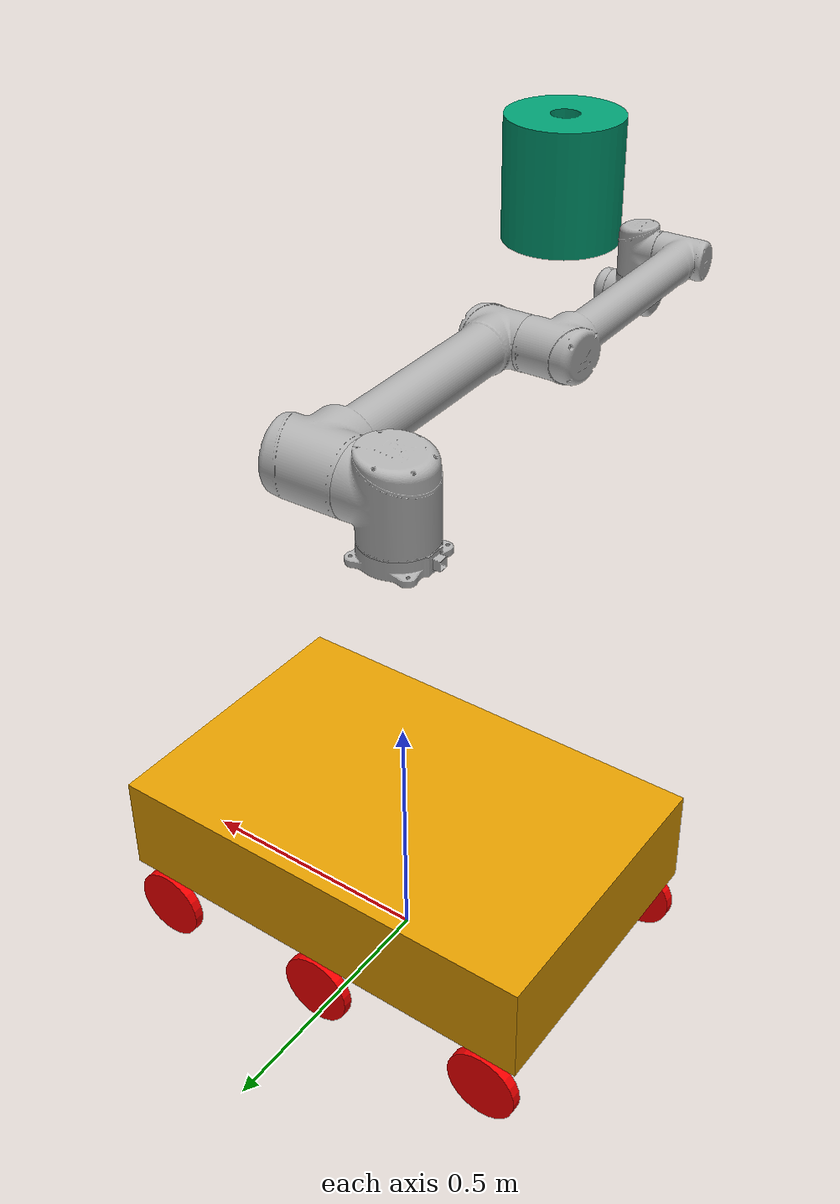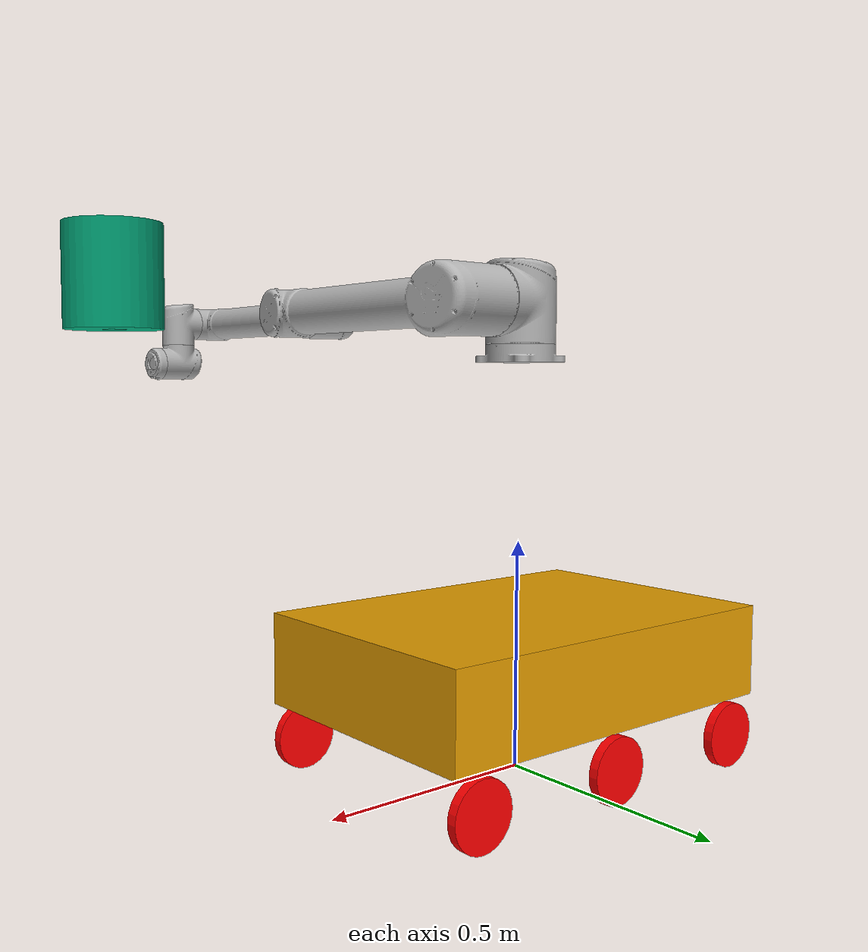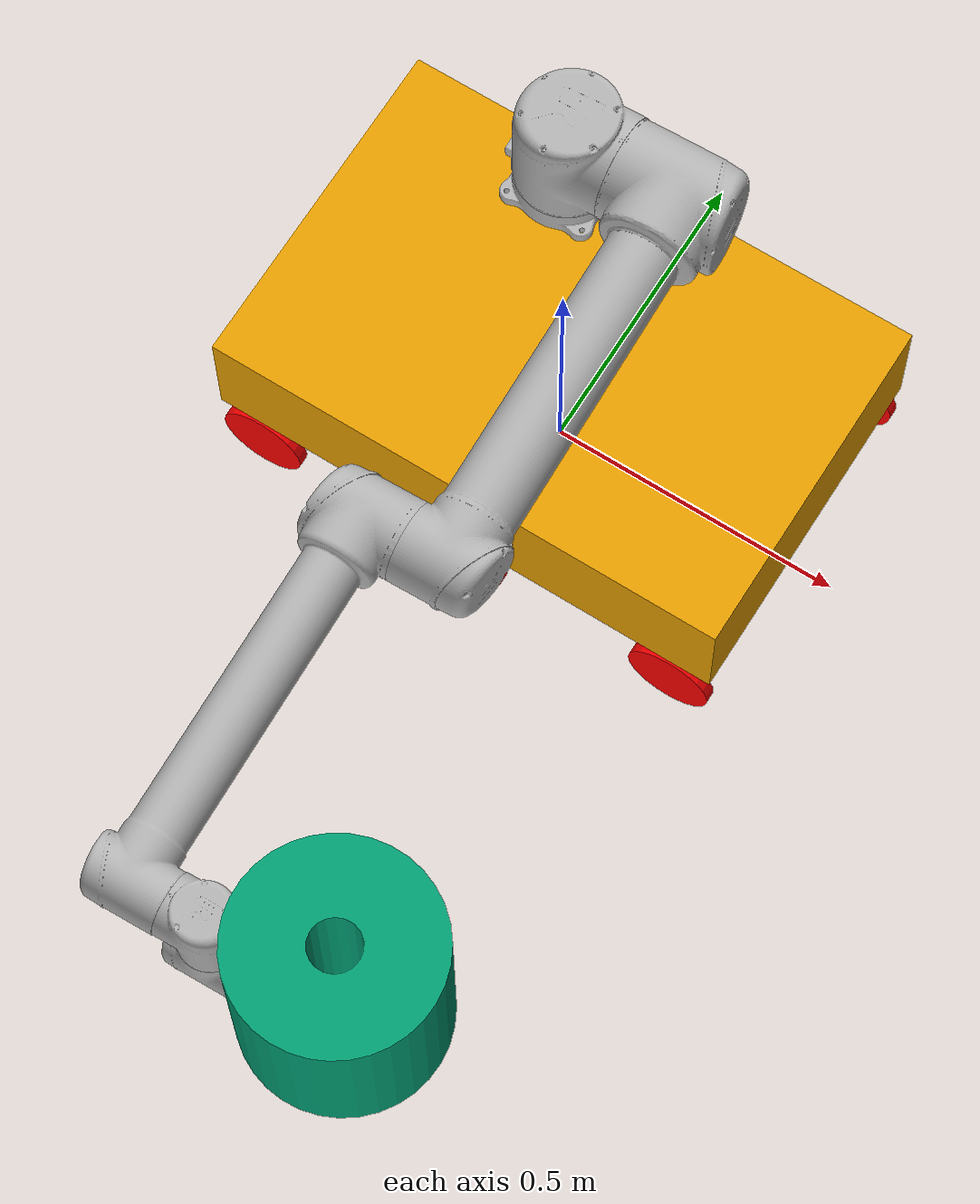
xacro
<?xml version="1.0" ?>
<!-- |    This document was autogenerated by xacro from mobile_manipulator.urdf.xacro  | -->
<!-- |    EDITING THIS FILE BY HAND IS NOT RECOMMENDED                                 | -->
<robot name="mobile_ur10" xmlns:xacro="http://ros.org/wiki/xacro">

    <!-- mobile base description -->
    <xacro:include filename="$(find models)/mobile_base/mobile_base.urdf.xacro"/>

    <joint name="arm_to_mobile_base" type="fixed">
    <!--origin xyz="0 0 ${.352 / 2}" rpy="0 0 0" /-->
        <origin xyz="0 0 0.638" rpy="0 0 -1.5408" />
        <parent link="chassis" />
        <child link="base_link" />
    </joint>

<!--    < World link --> -->

    <!-- Measured from model -->

    <link name="base_link">
        <visual>
            <geometry>
                <mesh filename="package://ur_description/meshes/ur10/visual/base.dae" />
            </geometry>
            <material name="LightGrey">
                <color rgba="0.7 0.7 0.7 1.0" />
            </material>
        </visual>
        <collision>
            <geometry>
                <mesh filename="package://ur_description/meshes/ur10/collision/base.stl" />
            </geometry>
        </collision>
	<inertial>
            <mass value="4.0" />
            <origin rpy="0 0 0" xyz="0.0 0.0 .125" />
            <inertia ixx="0.0061063308908" ixy="0.0" ixz="0.0" iyy="0.0061063308908" iyz="0.0" izz="0.01125" />
        </inertial>
    </link>

    <joint name="shoulder_pan_joint" type="revolute">
        <parent link="base_link" />
        <child link="shoulder_link" />
        <origin rpy="0.0 0.0 0.0" xyz="0.0 0.0 0.1273" />
        <axis xyz="0 0 1" />
        <limit effort="330.0" lower="-3.14159265359" upper="3.14159265359" velocity="2.16" />
        <dynamics damping="0.0" friction="0.0" />
    </joint>

    <link name="shoulder_link">
        <visual>
            <geometry>
                <mesh filename="package://ur_description/meshes/ur10/visual/shoulder.dae" />
            </geometry>
            <material name="LightGrey">
                <color rgba="0.7 0.7 0.7 1.0" />
            </material>
        </visual>
        <collision>
            <geometry>
                <mesh filename="package://ur_description/meshes/ur10/collision/shoulder.stl" />
            </geometry>
        </collision>
	<inertial>
            <mass value="7.778" />
            <origin rpy="0 0 0" xyz="0.0 0.0 0.0" />
            <inertia ixx="0.0314743125769" ixy="0.0" ixz="0.0" iyy="0.0314743125769" iyz="0.0" izz="0.021875625" />
        </inertial>
    </link>

    <joint name="shoulder_lift_joint" type="revolute">
        <parent link="shoulder_link" />
        <child link="upper_arm_link" />
        <origin rpy="0.0 1.57079632679 0.0" xyz="0.0 0.220941 0.0" />
        <axis xyz="0 1 0" />
        <limit effort="330.0" lower="-3.14159265359" upper="3.14159265359" velocity="2.16" />
        <dynamics damping="0.0" friction="0.0" />
    </joint>

    <link name="upper_arm_link">
        <visual>
            <geometry>
                <mesh filename="package://ur_description/meshes/ur10/visual/upperarm.dae" />
            </geometry>
            <material name="LightGrey">
                <color rgba="0.7 0.7 0.7 1.0" />
            </material>
        </visual>
        <collision>
            <geometry>
                <mesh filename="package://ur_description/meshes/ur10/collision/upperarm.stl" />
            </geometry>
        </collision>
	<inertial>
            <mass value="12.93" />
            <origin rpy="0 0 0" xyz="0.0 0.0 0.306" />
            <inertia ixx="0.421753803798" ixy="0.0" ixz="0.0" iyy="0.421753803798" iyz="0.0" izz="0.036365625" />
        </inertial>
    </link>

    <joint name="elbow_joint" type="revolute">
        <parent link="upper_arm_link" />
        <child link="forearm_link" />
        <origin rpy="0.0 0.0 0.0" xyz="0.0 -0.1719 0.612" />
        <axis xyz="0 1 0" />
        <limit effort="150.0" lower="-3.14159265359" upper="3.14159265359" velocity="3.15" />
        <dynamics damping="0.0" friction="0.0" />
    </joint>

    <link name="forearm_link">
        <visual>
            <geometry>
                <mesh filename="package://ur_description/meshes/ur10/visual/forearm.dae" />
            </geometry>
            <material name="LightGrey">
                <color rgba="0.7 0.7 0.7 1.0" />
            </material>
        </visual>
        <collision>
            <geometry>
                <mesh filename="package://ur_description/meshes/ur10/collision/forearm.stl" />
            </geometry>
        </collision>
	<inertial>
            <mass value="3.87" />
            <origin rpy="0 0 0" xyz="0.0 0.0 0.28615" />
            <inertia ixx="0.111069694097" ixy="0.0" ixz="0.0" iyy="0.111069694097" iyz="0.0" izz="0.010884375" />
        </inertial>
    </link>

    <joint name="wrist_1_joint" type="revolute">
        <parent link="forearm_link" />
        <child link="wrist_1_link" />
        <origin rpy="0.0 1.57079632679 0.0" xyz="0.0 0.0 0.5723" />
        <axis xyz="0 1 0" />
        <limit effort="54.0" lower="-3.14159265359" upper="3.14159265359" velocity="3.2" />
        <dynamics damping="0.0" friction="0.0" />
    </joint>

    <link name="wrist_1_link">
        <visual>
            <geometry>
                <mesh filename="package://ur_description/meshes/ur10/visual/wrist1.dae" />
            </geometry>
            <material name="LightGrey">
                <color rgba="0.7 0.7 0.7 1.0" />
            </material>
        </visual>
        <collision>
            <geometry>
                <mesh filename="package://ur_description/meshes/ur10/collision/wrist1.stl" />
            </geometry>
        </collision>
	<inertial>
            <mass value="1.96" />
            <origin rpy="0 0 0" xyz="0.0 0.0 0.0" />
            <inertia ixx="0.0051082479567" ixy="0.0" ixz="0.0" iyy="0.0051082479567" iyz="0.0" izz="0.0055125" />
        </inertial>
    </link>

    <joint name="wrist_2_joint" type="revolute">
        <parent link="wrist_1_link" />
        <child link="wrist_2_link" />
        <origin rpy="0.0 0.0 0.0" xyz="0.0 0.1149 0.0" />
        <axis xyz="0 0 1" />
        <limit effort="54.0" lower="-3.14159265359" upper="3.14159265359" velocity="3.2" />
        <dynamics damping="0.0" friction="0.0" />
    </joint>

    <link name="wrist_2_link">
        <visual>
            <geometry>
                <mesh filename="package://ur_description/meshes/ur10/visual/wrist2.dae" />
            </geometry>
            <material name="LightGrey">
                <color rgba="0.7 0.7 0.7 1.0" />
            </material>
        </visual>
        <collision>
            <geometry>
                <mesh filename="package://ur_description/meshes/ur10/collision/wrist2.stl" />
            </geometry>
        </collision>
	<inertial>
            <mass value="1.96" />
            <origin rpy="0 0 0" xyz="0.0 0.0 0.0" />
            <inertia ixx="0.0051082479567" ixy="0.0" ixz="0.0" iyy="0.0051082479567" iyz="0.0" izz="0.0055125" />
        </inertial>
    </link>

    <joint name="wrist_3_joint" type="revolute">
        <parent link="wrist_2_link" />
        <child link="wrist_3_link" />
        <origin rpy="0.0 0.0 0.0" xyz="0.0 0.0 0.1157" />
        <axis xyz="0 1 0" />
        <limit effort="54.0" lower="-3.14159265359" upper="3.14159265359" velocity="3.2" />
        <dynamics damping="0.0" friction="0.0" />
    </joint>

    <link name="wrist_3_link">
        <visual>
            <geometry>
                <mesh filename="package://ur_description/meshes/ur10/visual/wrist3.dae" />
            </geometry>
            <material name="LightGrey">
                <color rgba="0.7 0.7 0.7 1.0" />
            </material>
        </visual>
        <collision>
            <geometry>
                <mesh filename="package://ur_description/meshes/ur10/collision/wrist3.stl" />
            </geometry>
        </collision>
	<inertial>
            <mass value="0.202" />
            <origin rpy="0 0 0" xyz="0.0 0.0 0.0" />
            <inertia ixx="0.000526462289415" ixy="0.0" ixz="0.0" iyy="0.000526462289415" iyz="0.0" izz="0.000568125" />
        </inertial>
    </link>

    <joint name="ee_fixed_joint" type="fixed">
        <parent link="wrist_3_link" />
        <child link="ee_link" />
        <origin rpy="0.0 0.0 1.57079632679" xyz="0.0 0.0922 0.0" />
    </joint>

    <link name="ee_link">
        <collision>
            <geometry>
                <box size="0.01 0.01 0.01" />
            </geometry>
            <origin rpy="0 0 0" xyz="-0.01 0 0" />
        </collision>
	<inertial>
            <mass value="0.1" />
            <inertia ixx="0.03" iyy="0.03" izz="0.03" ixy="0.0" ixz="0.0" iyz="0.0" />
        </inertial>
    </link>

    <!-- Transmissions -->

    <transmission name="shoulder_pan_trans">
        <type>transmission_interface/SimpleTransmission</type>
        <joint name="shoulder_pan_joint">
            <hardwareInterface>hardware_interface/PositionJointInterface</hardwareInterface>
        </joint>
        <actuator name="shoulder_pan_motor">
            <mechanicalReduction>1</mechanicalReduction>
        </actuator>
    </transmission>

    <transmission name="shoulder_lift_trans">
        <type>transmission_interface/SimpleTransmission</type>
        <joint name="shoulder_lift_joint">
            <hardwareInterface>hardware_interface/PositionJointInterface</hardwareInterface>
        </joint>
        <actuator name="shoulder_lift_motor">
            <mechanicalReduction>1</mechanicalReduction>
        </actuator>
    </transmission>

    <transmission name="elbow_trans">
        <type>transmission_interface/SimpleTransmission</type>
        <joint name="elbow_joint">
            <hardwareInterface>hardware_interface/PositionJointInterface</hardwareInterface>
        </joint>
        <actuator name="elbow_motor">
            <mechanicalReduction>1</mechanicalReduction>
        </actuator>
    </transmission>

    <transmission name="wrist_1_trans">
        <type>transmission_interface/SimpleTransmission</type>
        <joint name="wrist_1_joint">
            <hardwareInterface>hardware_interface/PositionJointInterface</hardwareInterface>
        </joint>
        <actuator name="wrist_1_motor">
            <mechanicalReduction>1</mechanicalReduction>
        </actuator>
    </transmission>

    <transmission name="wrist_2_trans">
        <type>transmission_interface/SimpleTransmission</type>
        <joint name="wrist_2_joint">
            <hardwareInterface>hardware_interface/PositionJointInterface</hardwareInterface>
        </joint>
        <actuator name="wrist_2_motor">
            <mechanicalReduction>1</mechanicalReduction>
        </actuator>
    </transmission>

    <transmission name="wrist_3_trans">
        <type>transmission_interface/SimpleTransmission</type>
        <joint name="wrist_3_joint">
            <hardwareInterface>hardware_interface/PositionJointInterface</hardwareInterface>
        </joint>
        <actuator name="wrist_3_motor">
            <mechanicalReduction>1</mechanicalReduction>
        </actuator>
    </transmission>

    <!-- ROS base_link to UR 'Base' Coordinates transform -->

    <link name="base"/>

    <joint name="base_link-base_fixed_joint" type="fixed">
        <origin rpy="0 0 -3.14159265359" xyz="0 0 0"/>
        <parent link="base_link"/>
        <child link="base"/>
    </joint>

    <!-- Frame coincident with all-zeros TCP on UR controller -->

    <link name="tool0"/>

    <joint name="wrist_3_link-tool0_fixed_joint" type="fixed">
        <origin rpy="-1.57079632679 0 0" xyz="0 0.0922 0"/>
        <parent link="wrist_3_link"/>
        <child link="tool0"/>
    </joint>

    <!-- Floating Cone as End Effector -->

    <link name="cone_link">
        <visual>
            <origin rpy="0 0 0" xyz="0 0.093 0.11"/>
            <geometry>
                <mesh filename="package://models/fixed_cone/meshes/Cone100.STL"/>
            </geometry>
        </visual>
        <collision>
            <origin rpy="0 0 0" xyz="0 0.093 0.11"/>
            <geometry>
                <mesh filename="package://models/fixed_cone/meshes/Cone100.STL"/>
            </geometry>
        </collision>
	<inertial>
            <mass value="1" />
            <inertia ixx="0.01" ixy="0.005" ixz="0.0003" iyy="0.02" iyz="0.00004" izz="0.02"/>
        </inertial>
    </link>

    <joint name="floating_cone" type="fixed">
        <origin rpy="0 0 0" xyz="0 0 0"/>
        <!--z=0.295 ~== cone face flush with tool-->
        <parent link="tool0"/>
        <child link="cone_link"/>
    </joint>

    <!-- Gazebo Plugin -->

    <gazebo>
        <plugin filename="libgazebo_ros_control.so" name="ros_control"/>
    </gazebo>

    <!-- Include Kinect Sensor -->

    <xacro:include filename="$(find gazebo)/description/kinect_sensor.urdf.xacro">
    </xacro:include>

</robot>

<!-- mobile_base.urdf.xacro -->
<!-- |    This document was autogenerated by xacro from mobile_base.urdf.xacro         | -->
<!-- |    EDITING THIS FILE BY HAND IS NOT RECOMMENDED                                 | -->
<robot name="fake_MiR200" xmlns:xacro="http://ros.org/wiki/xacro">
  <!-- Chassis link -->
  <link name="chassis">
    <visual name="visual">
      <geometry>
        <box size="0.89 0.58 0.2"/>
      </geometry>
    </visual>
    <collision name="collision">
      <geometry>
        <box size="0.89 0.58 0.2"/>
      </geometry>
    </collision>
    <inertial>
      <mass value="63.65"/>
      <inertia ixx="1.99648833333" ixy="0.0" ixz="0.0" iyy="4.41359708333" iyz="0.0" izz="5.98575208333"/>
    </inertial>
  </link>
  <link name="wheel_1_link">
    <visual>
      <geometry>
        <cylinder length="0.02" radius="0.071"/>
      </geometry>
      <material name="red">
        <color rgba="1 0 0 1"/>
      </material>
    </visual>
    <collision>
      <geometry>
        <cylinder length="0.02" radius="0.071"/>
      </geometry>
    </collision>
    <inertial>
      <mass value="0.558333333333"/>
      <inertia ixx="0.000722250694444" ixy="0.0" ixz="0.0" iyy="0.000722250694444" iyz="0.0" izz="0.00140727916667"/>
    </inertial>
  </link>
  <joint name="wheel_1_joint" type="fixed">
    <axis xyz="0 0 1"/>
    <parent link="chassis"/>
    <child link="wheel_1_link"/>
    <origin rpy="-1.57079632679 0 0" xyz="0.374 0.28 -0.181"/>
  </joint>
  <link name="wheel_2_link">
    <visual>
      <geometry>
        <cylinder length="0.02" radius="0.071"/>
      </geometry>
      <material name="red">
        <color rgba="1 0 0 1"/>
      </material>
    </visual>
    <collision>
      <geometry>
        <cylinder length="0.02" radius="0.071"/>
      </geometry>
    </collision>
    <inertial>
      <mass value="0.558333333333"/>
      <inertia ixx="0.000722250694444" ixy="0.0" ixz="0.0" iyy="0.000722250694444" iyz="0.0" izz="0.00140727916667"/>
    </inertial>
  </link>
  <joint name="wheel_2_joint" type="fixed">
    <axis xyz="0 0 1"/>
    <parent link="chassis"/>
    <child link="wheel_2_link"/>
    <origin rpy="-1.57079632679 0 0" xyz="0 0.28 -0.181"/>
  </joint>
  <link name="wheel_3_link">
    <visual>
      <geometry>
        <cylinder length="0.02" radius="0.071"/>
      </geometry>
      <material name="red">
        <color rgba="1 0 0 1"/>
      </material>
    </visual>
    <collision>
      <geometry>
        <cylinder length="0.02" radius="0.071"/>
      </geometry>
    </collision>
    <inertial>
      <mass value="0.558333333333"/>
      <inertia ixx="0.000722250694444" ixy="0.0" ixz="0.0" iyy="0.000722250694444" iyz="0.0" izz="0.00140727916667"/>
    </inertial>
  </link>
  <joint name="wheel_3_joint" type="fixed">
    <axis xyz="0 0 1"/>
    <parent link="chassis"/>
    <child link="wheel_3_link"/>
    <origin rpy="-1.57079632679 0 0" xyz="-0.374 0.28 -0.181"/>
  </joint>
  <link name="wheel_4_link">
    <visual>
      <geometry>
        <cylinder length="0.02" radius="0.071"/>
      </geometry>
      <material name="red">
        <color rgba="1 0 0 1"/>
      </material>
    </visual>
    <collision>
      <geometry>
        <cylinder length="0.02" radius="0.071"/>
      </geometry>
    </collision>
    <inertial>
      <mass value="0.558333333333"/>
      <inertia ixx="0.000722250694444" ixy="0.0" ixz="0.0" iyy="0.000722250694444" iyz="0.0" izz="0.00140727916667"/>
    </inertial>
  </link>
  <joint name="wheel_4_joint" type="fixed">
    <axis xyz="0 0 1"/>
    <parent link="chassis"/>
    <child link="wheel_4_link"/>
    <origin rpy="-1.57079632679 0 0" xyz="-0.374 -0.28 -0.181"/>
  </joint>
  <link name="wheel_5_link">
    <visual>
      <geometry>
        <cylinder length="0.02" radius="0.071"/>
      </geometry>
      <material name="red">
        <color rgba="1 0 0 1"/>
      </material>
    </visual>
    <collision>
      <geometry>
        <cylinder length="0.02" radius="0.071"/>
      </geometry>
    </collision>
    <inertial>
      <mass value="0.558333333333"/>
      <inertia ixx="0.000722250694444" ixy="0.0" ixz="0.0" iyy="0.000722250694444" iyz="0.0" izz="0.00140727916667"/>
    </inertial>
  </link>
  <joint name="wheel_5_joint" type="fixed">
    <axis xyz="0 0 1"/>
    <parent link="chassis"/>
    <child link="wheel_5_link"/>
    <origin rpy="-1.57079632679 0 0" xyz="0 -0.28 -0.181"/>
  </joint>
  <link name="wheel_6_link">
    <visual>
      <geometry>
        <cylinder length="0.02" radius="0.071"/>
      </geometry>
      <material name="red">
        <color rgba="1 0 0 1"/>
      </material>
    </visual>
    <collision>
      <geometry>
        <cylinder length="0.02" radius="0.071"/>
      </geometry>
    </collision>
    <inertial>
      <mass value="0.558333333333"/>
      <inertia ixx="0.000722250694444" ixy="0.0" ixz="0.0" iyy="0.000722250694444" iyz="0.0" izz="0.00140727916667"/>
    </inertial>
  </link>
  <joint name="wheel_6_joint" type="fixed">
    <axis xyz="0 0 1"/>
    <parent link="chassis"/>
    <child link="wheel_6_link"/>
    <origin rpy="-1.57079632679 0 0" xyz="0.374 -0.28 -0.181"/>
  </joint>
  <link name="world"/>
  <joint name="prismatic_chassis_to_world" type="prismatic">
    <origin rpy="0 0 0" xyz="0 0 0.252"/>
    <parent link="world"/>
    <child link="chassis"/>
    <axis xyz="1 0 0"/>
    <limit effort="1000.0" lower="-100" upper="100" velocity="2"/>
  </joint>
  <transmission name="prismatic_chassis_to_world_trans">
    <type>transmission_interface/SimpleTransmission</type>
    <joint name="prismatic_chassis_to_world">
      <hardwareInterface>hardware_interface/EffortJointInterface</hardwareInterface>
    </joint>
    <actuator name="prismatic_chassis_to_world_motor">
      <hardwareInterface>hardware_interface/EffortJointInterface</hardwareInterface>
      <mechanicalReduction>1</mechanicalReduction>
    </actuator>
  </transmission>
</robot>

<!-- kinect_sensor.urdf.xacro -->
<robot xmlns:xacro="http://www.ros.org/wiki/xacro" name="kinect_link">
	<!--Add Kinect Visual/Collision/Inertial Box-->
	<link name="kinect_link">
		<collision>
			<origin xyz="0 0 0" rpy="0 0 0"/>
			<geometry>
				<box size="0.05 0.2 0.05"/>
			</geometry>
		</collision>
		<inertial>
			<mass value="0.1"/>
			<origin xyz="0 0 0" rpy="0 0 0"/>
			<inertia ixx="0.001" ixy="0" ixz="0" iyy="0.001" iyz="0" izz="0.001"/>
		</inertial>
	</link>
	<!--Set Position/Orientation of Kinect Box-->
	<joint name="kinect_joint" type="fixed">
		<axis xyz="0 1 0"/>
		<origin xyz="3.0 0.0 1.0" rpy="0.0 0.3 3.14"/>
		<parent link="shoulder_link"/>
		<child link="kinect_link"/>
	</joint>
	<!--Match Gazebo Image with Proper Frame-->
	<joint name="camera_optical_joint" type="fixed">
		<origin xyz="0 0 0" rpy="${-pi/2} 0 ${-pi/2}"/>
		<parent link="kinect_link"/>
		<child link="camera_optical_link"/>
	</joint>
	<link name="camera_optical_link">
	</link>
	<!--Set Kinect Sensor Functional Parameters-->
	<gazebo reference="kinect_link">
		<sensor type="depth" name="camera_1">
			<always_on>1</always_on>
			<visualize>true</visualize>
			<camera>
				<horizontal_fov>1.047</horizontal_fov>
				<image>
					<width>640</width>
					<height>480</height>
					<format>R8G8B8</format>
				</image>
				<depth_camera></depth_camera>
				<clip>
					<near>0.1</near>
					<far>100</far>
				</clip>
			</camera>
			<plugin name="camera_controller" filename="libgazebo_ros_openni_kinect.so">
				<alwaysOn>true</alwaysOn>
					<updateRate>10.0</updateRate>
					<cameraName>kinect</cameraName>
					<frameName>camera_optical_link</frameName>
				<imageTopicName>rgb/image_raw</imageTopicName>
				<depthImageTopicName>depth/image_raw</depthImageTopicName>
				<pointCloudTopicName>depth/points</pointCloudTopicName>
				<cameraInfoTopicName>rgb/camera_info</cameraInfoTopicName>
				<depthImageCameraInfoTopicName>depth/camera_info</depthImageCameraInfoTopicName>
				<pointCloudCutoff>0.4</pointCloudCutoff>
					<hackBaseline>0.07</hackBaseline>
					<distortionK1>0.0</distortionK1>
					<distortionK2>0.0</distortionK2>
					<distortionK3>0.0</distortionK3>
					<distortionT1>0.0</distortionT1>
					<distortionT2>0.0</distortionT2>
				<CxPrime>0.0</CxPrime>
				<Cx>0.0</Cx>
				<Cy>0.0</Cy>
				<focalLength>0.0</focalLength>
			</plugin>
		</sensor>
	</gazebo>
</robot>
